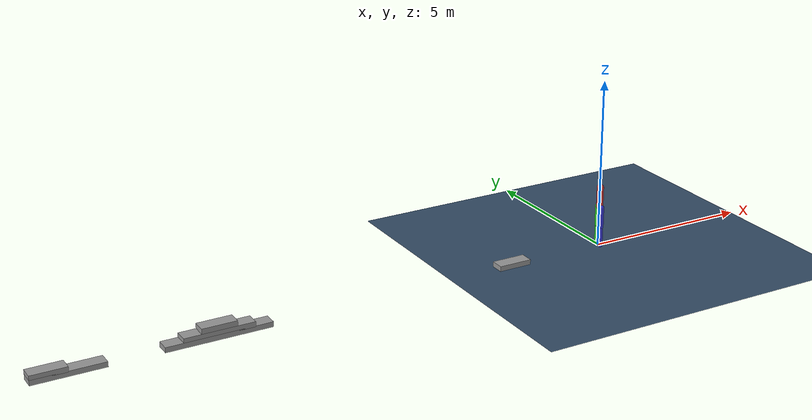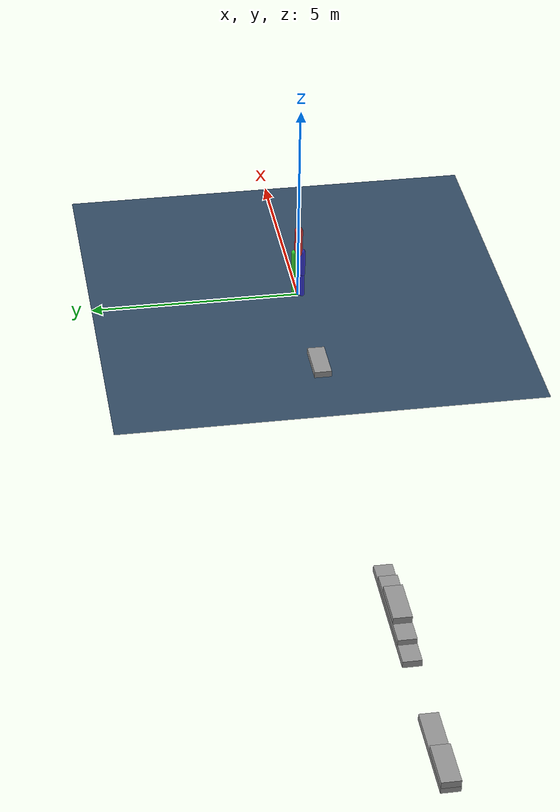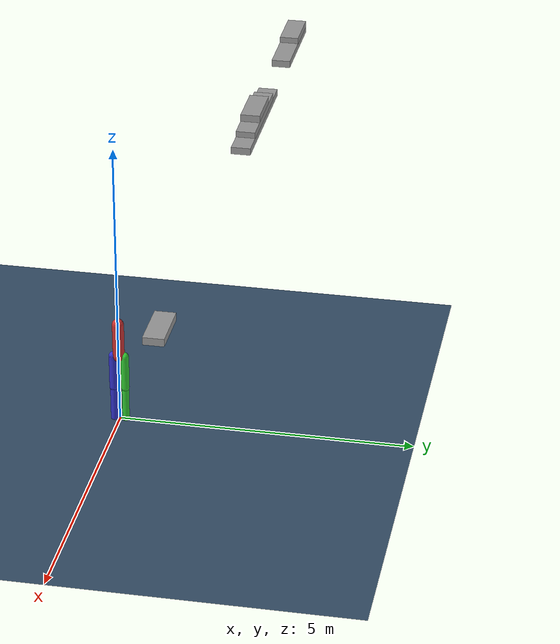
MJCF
<mujoco model="simple_biped">
    <compiler angle="degree"/>

    <option timestep="0.002"/>

    <worldbody>
        <light name="sun" directional="true" dir="-1 -1 -2" castshadow="true"/>

        <!-- Ground plane -->
        <geom name="ground" type="plane" size="5 5 0.1" rgba="0.2 0.3 0.4 1"/>
        <!-- Obstacle box -->
        <geom
            name="obstacle_box"
            type="box"
            pos="-3 0 0.075"
            size="0.5 0.2 0.075"
            rgba="0.6 0.6 0.6 1"/>

        <geom
            name="obstacle_box2"
            type="box"
            pos="-12 0 0.075"
            size="1.5 0.2 0.075"
            rgba="0.6 0.6 0.6 1"/>

        <geom
            name="obstacle_box3"
            type="box"
            pos="-12 0 0.2"
            size="1.0 0.2 0.075"
            rgba="0.6 0.6 0.6 1"/>

        <geom
            name="obstacle_box4"
            type="box"
            pos="-12 0 0.35"
            size="0.5 0.2 0.075"
            rgba="0.6 0.6 0.6 1"/>

        <geom
            name="obstacle_box5"
            type="box"
            pos="-16 0 0.075"
            size="1 0.2 0.075"
            rgba="0.6 0.6 0.6 1"/>

        <geom
            name="obstacle_box6"
            type="box"
            pos="-16.5 0 0.2"
            size="0.5 0.2 0.075"
            rgba="0.6 0.6 0.6 1"/>

        <!-- Torso -->
        <body name="torso" pos="0 0 1.5">
            <geom type="capsule" size="0.1 0.3" mass="8" rgba="0.8 0.2 0.2 1"/>
            <joint name="rootx" type="slide" axis="1 0 0"/>
            <joint name="rootz" type="slide" axis="0 0 1"/>
            <joint name="rooty" type="hinge" axis="0 1 0"/>

            <!-- Right thigh -->
            <body name="right_thigh" pos="0 -0.1 -0.3">
                <joint name="right_hip" type="hinge" axis="0 1 0" range="-60 60"/>
                <geom type="capsule" size="0.07 0.3" mass="1" rgba="0.2 0.2 0.8 1" pos="0 0 -0.3"/>
                <!-- Right shin -->
                <body name="right_shin" pos="0 0 -0.6">
                    <joint name="right_knee" type="hinge" axis="0 1 0" range="-120 -5"/>
                    <geom name="right_shin_geom" type="capsule" size="0.06 0.3" mass="1" rgba="0.2 0.2 0.8 1" pos="0 0 -0.3"/>
                </body>
            </body>

            <!-- Left thigh -->
            <body name="left_thigh" pos="0 0.1 -0.3">
                <joint name="left_hip" type="hinge" axis="0 1 0" range="-60 60"/>
                <geom type="capsule" size="0.07 0.3" mass="1" rgba="0.2 0.8 0.2 1" pos="0 0 -0.3"/>
                <!-- Left shin -->
                <body name="left_shin" pos="0 0 -0.6">
                    <joint name="left_knee" type="hinge" axis="0 1 0" range="-120 -5"/>
                    <geom name="left_shin_geom" type="capsule" size="0.06 0.3" mass="1" rgba="0.2 0.8 0.2 1" pos="0 0 -0.3"/>
                </body>
            </body>
        </body>
    </worldbody>

    <actuator>
        <velocity joint="right_hip" kv="20"/>
        <velocity joint="right_knee" kv="20"/>
        <velocity joint="left_hip" kv="20"/>
        <velocity joint="left_knee" kv="20"/>
    </actuator>

</mujoco>
